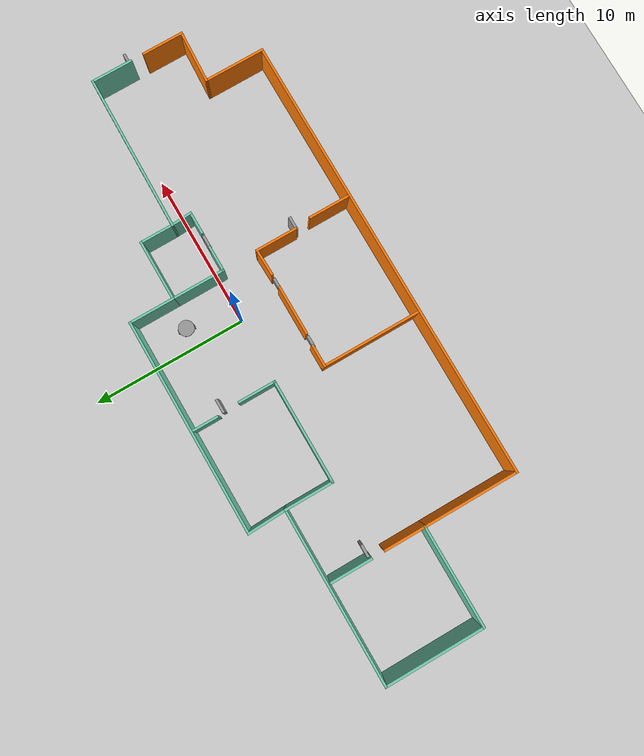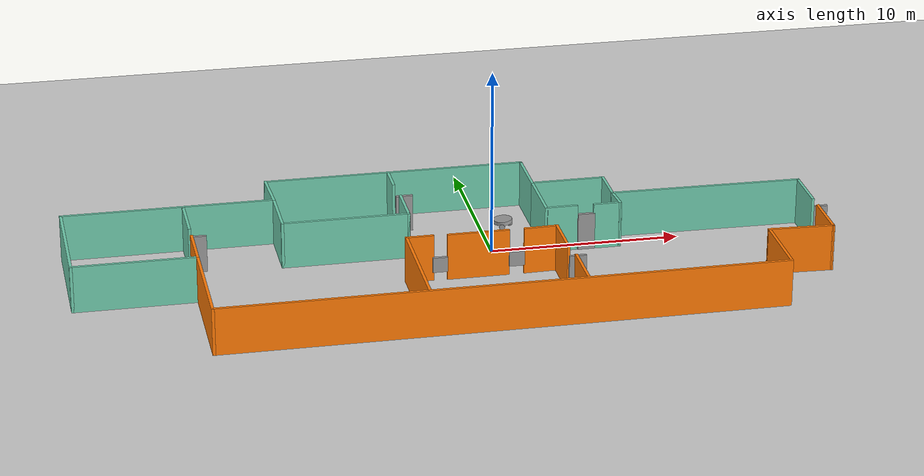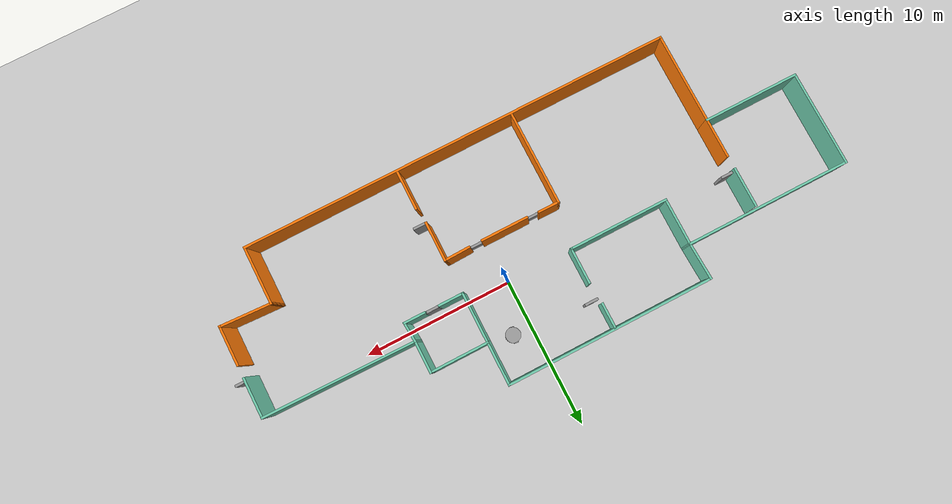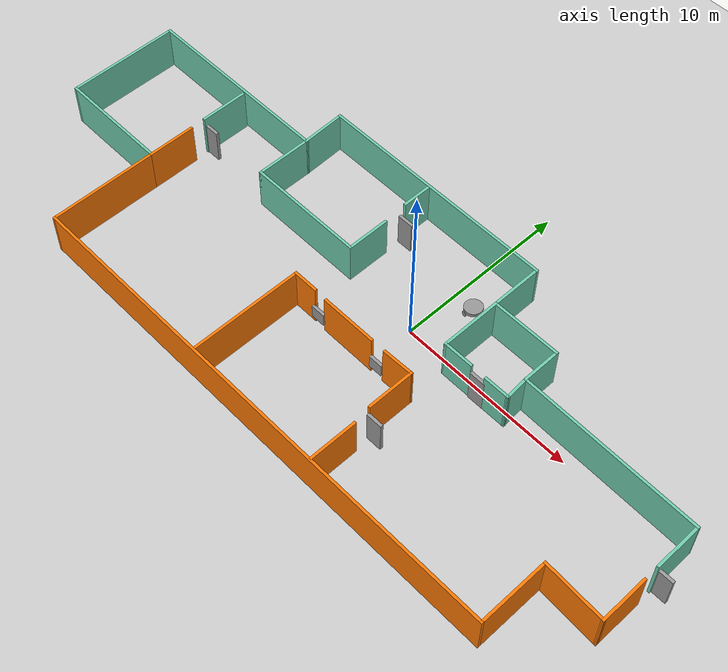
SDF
<sdf version="1.6">
 <world name="default">
  <plugin name="hello" filename="libhello.so"/>
  <light name="sun" type="directional">
   <pose>0 0 10 0 -0 0</pose>
   <diffuse>0.8 0.8 0.8 1</diffuse>
   <specular>0.2 0.2 0.2 1</specular>
   <attenuation>
    <range>1000</range>
    <constant>0.9</constant>
    <linear>0.01</linear>
    <quadratic>0.001</quadratic>
   </attenuation>
   <direction>-0.5 0.1 -0.9</direction>
  </light>
  <model name="ground_plane">
   <static>1</static>
   <link name="link">
    <collision name="collision">
     <geometry><plane><normal>0 0 1</normal><size>100 100</size></plane></geometry>
     <surface><friction><ode><mu>100</mu><mu2>50</mu2></ode></friction></surface>
    </collision>
    <visual name="visual">
     <cast_shadows>0</cast_shadows>
     <geometry><plane><normal>0 0 1</normal><size>100 100</size></plane></geometry>
     <material>
      <script><uri>file://media/materials/scripts/gazebo.material</uri><name>Gazebo/Grey</name></script>
     </material>
    </visual>
   </link>
  </model>
  <gravity>0 0 -9.8</gravity>
  <magnetic_field>6e-06 2.3e-05 -4.2e-05</magnetic_field>
  <atmosphere type="adiabatic"/>
  <physics name="default_physics" default="0" type="ode">
   <max_step_size>0.001</max_step_size>
   <real_time_factor>1</real_time_factor>
   <real_time_update_rate>1000</real_time_update_rate>
  </physics>
  <scene><ambient>0.4 0.4 0.4 1</ambient><background>0.7 0.7 0.7 1</background><shadows>1</shadows></scene>
  <spherical_coordinates>
   <surface_model>EARTH_WGS84</surface_model>
   <latitude_deg>0</latitude_deg>
   <longitude_deg>0</longitude_deg>
   <elevation>0</elevation>
   <heading_deg>0</heading_deg>
  </spherical_coordinates>
  <model name="Building">
   <pose>-2.663 -1.7492 0 0 -0 0</pose>
   <link name="Door_0">
    <collision name="Door_0_Collision">
     <geometry><box><size>0.9 0.17 2</size></box></geometry>
     <pose>0 0 1 0 -0 0</pose>
    </collision>
    <visual name="Door_0_Visual">
     <pose>0 0 1 0 -0 0</pose>
     <geometry><box><size>0.9 0.17 2</size></box></geometry>
     <material>
      <script><uri>file://media/materials/scripts/gazebo.material</uri><name>Gazebo/Grey</name></script>
     </material>
    </visual>
    <pose>7.59558 1.21844 0 0 -0 0</pose>
   </link>
   <link name="Door_1">
    <collision name="Door_1_Collision">
     <geometry><box><size>0.9 0.17 2</size></box></geometry>
     <pose>0 0 1 0 -0 0</pose>
    </collision>
    <visual name="Door_1_Visual">
     <pose>0 0 1 0 -0 0</pose>
     <geometry><box><size>0.9 0.17 2</size></box></geometry>
     <material>
      <script><uri>file://media/materials/scripts/gazebo.material</uri><name>Gazebo/Grey</name></script>
     </material>
    </visual>
    <pose>19.7905 -0.145416 0 0 -0 0</pose>
   </link>
   <link name="Door_2">
    <collision name="Door_2_Collision">
     <geometry><box><size>0.9 0.17 2</size></box></geometry>
     <pose>0 0 1 0 -0 0</pose>
    </collision>
    <visual name="Door_2_Visual">
     <pose>0 0 1 0 -0 0</pose>
     <geometry><box><size>0.9 0.17 2</size></box></geometry>
     <material>
      <script><uri>file://media/materials/scripts/gazebo.material</uri><name>Gazebo/Grey</name></script>
     </material>
    </visual>
    <pose>5.94671 -3.77556 0 0 -0 0</pose>
   </link>
   <link name="Door_3">
    <collision name="Door_3_Collision">
     <geometry><box><size>0.9 0.17 2</size></box></geometry>
     <pose>0 0 1 0 -0 0</pose>
    </collision>
    <visual name="Door_3_Visual">
     <pose>0 0 1 0 -0 0</pose>
     <geometry><box><size>0.9 0.17 2</size></box></geometry>
     <material>
      <script><uri>file://media/materials/scripts/gazebo.material</uri><name>Gazebo/Grey</name></script>
     </material>
    </visual>
    <pose>-1.31358 5.33056 0 0 -0 0</pose>
   </link>
   <link name="Door_4">
    <collision name="Door_4_Collision">
     <geometry><box><size>0.9 0.17 2</size></box></geometry>
     <pose>0 0 1 0 -0 0</pose>
    </collision>
    <visual name="Door_4_Visual">
     <pose>0 0 1 0 -0 0</pose>
     <geometry><box><size>0.9 0.17 2</size></box></geometry>
     <material>
      <script><uri>file://media/materials/scripts/gazebo.material</uri><name>Gazebo/Grey</name></script>
     </material>
    </visual>
    <pose>-12.6402 2.25295 0 0 -0 0</pose>
   </link>
   <link name="Wall_0">
    <collision name="Wall_0_Collision">
     <geometry><box><size>14 0.15 2.5</size></box></geometry>
     <pose>0 0 1.25 0 -0 0</pose>
    </collision>
    <visual name="Wall_0_Visual">
     <pose>0 0 1.25 0 -0 0</pose>
     <geometry><box><size>14 0.15 2.5</size></box></geometry>
     <material>
      <script><uri>file://media/materials/scripts/gazebo.material</uri><name>Gazebo/Grey</name></script>
      <ambient>0.435294 0.796078 0.67451 1</ambient>
     </material>
     <meta><layer>0</layer></meta>
    </visual>
    <pose>-1.47677 7.4485 0 0 -0 0</pose>
   </link>
   <link name="Wall_1">
    <collision name="Wall_1_Collision">
     <geometry><box><size>3 0.15 2.5</size></box></geometry>
     <pose>0 0 1.25 0 -0 0</pose>
    </collision>
    <visual name="Wall_1_Visual">
     <pose>0 0 1.25 0 -0 0</pose>
     <geometry><box><size>3 0.15 2.5</size></box></geometry>
     <material>
      <script><uri>file://media/materials/scripts/gazebo.material</uri><name>Gazebo/Grey</name></script>
      <ambient>0.435294 0.796078 0.67451 1</ambient>
     </material>
     <meta><layer>0</layer></meta>
    </visual>
    <pose>5.44822 6.0235 0 0 0 -1.5708</pose>
   </link>
   <link name="Wall_10">
    <collision name="Wall_10_Collision">
     <geometry><box><size>6.5 0.15 2.5</size></box></geometry>
     <pose>0 0 1.25 0 -0 0</pose>
    </collision>
    <visual name="Wall_10_Visual">
     <pose>0 0 1.25 0 -0 0</pose>
     <geometry><box><size>6.5 0.15 2.5</size></box></geometry>
     <material>
      <script><uri>file://media/materials/scripts/gazebo.material</uri><name>Gazebo/Grey</name></script>
      <ambient>0.435294 0.796078 0.67451 1</ambient>
     </material>
     <meta><layer>0</layer></meta>
    </visual>
    <pose>-16.2268 -1.3515 0 0 -0 3.14159</pose>
   </link>
   <link name="Wall_11">
    <collision name="Wall_11_Collision">
     <geometry><box><size>6.5 0.15 2.5</size></box></geometry>
     <pose>0 0 1.25 0 -0 0</pose>
    </collision>
    <visual name="Wall_11_Visual">
     <pose>0 0 1.25 0 -0 0</pose>
     <geometry><box><size>6.5 0.15 2.5</size></box></geometry>
     <material>
      <script><uri>file://media/materials/scripts/gazebo.material</uri><name>Gazebo/Grey</name></script>
      <ambient>0.435294 0.796078 0.67451 1</ambient>
     </material>
     <meta><layer>0</layer></meta>
    </visual>
    <pose>-19.4018 1.8235 0 0 -0 1.5708</pose>
   </link>
   <link name="Wall_12">
    <collision name="Wall_12_Collision">
     <geometry><box><size>11.25 0.15 2.5</size></box></geometry>
     <pose>0 0 1.25 0 -0 0</pose>
    </collision>
    <visual name="Wall_12_Visual">
     <pose>0 0 1.25 0 -0 0</pose>
     <geometry><box><size>11.25 0.15 2.5</size></box></geometry>
     <material>
      <script><uri>file://media/materials/scripts/gazebo.material</uri><name>Gazebo/Grey</name></script>
      <ambient>0.435294 0.796078 0.67451 1</ambient>
     </material>
     <meta><layer>0</layer></meta>
    </visual>
    <pose>-13.8518 4.9985 0 0 -0 0</pose>
   </link>
   <link name="Wall_13">
    <collision name="Wall_13_Collision">
     <geometry><box><size>2.60204 0.15 2.5</size></box></geometry>
     <pose>0 0 1.25 0 -0 0</pose>
    </collision>
    <visual name="Wall_13_Visual">
     <pose>0 0 1.25 0 -0 0</pose>
     <geometry><box><size>2.60204 0.15 2.5</size></box></geometry>
     <material>
      <script><uri>file://media/materials/scripts/gazebo.material</uri><name>Gazebo/Grey</name></script>
      <ambient>0.435294 0.796078 0.67451 1</ambient>
     </material>
     <meta><layer>0</layer></meta>
    </visual>
    <pose>-8.35177 6.2235 0 0 -0 1.61159</pose>
   </link>
   <link name="Wall_15">
    <collision name="Wall_15_Collision">
     <geometry><box><size>3.5 0.15 2.5</size></box></geometry>
     <pose>0 0 1.25 0 -0 0</pose>
    </collision>
    <visual name="Wall_15_Visual">
     <pose>0 0 1.25 0 -0 0</pose>
     <geometry><box><size>3.5 0.15 2.5</size></box></geometry>
     <material>
      <script><uri>file://media/materials/scripts/gazebo.material</uri><name>Gazebo/Grey</name></script>
      <ambient>0.435294 0.796078 0.67451 1</ambient>
     </material>
     <meta><layer>0</layer></meta>
    </visual>
    <pose>5.44822 2.9235 0 0 0 -1.5708</pose>
   </link>
   <link name="Wall_16">
    <collision name="Wall_16_Collision">
     <geometry><box><size>1.75 0.15 2.5</size></box></geometry>
     <pose>0 0 1.25 0 -0 0</pose>
    </collision>
    <visual name="Wall_16_Visual">
     <pose>0 0 1.25 0 -0 0</pose>
     <geometry><box><size>1.75 0.15 2.5</size></box></geometry>
     <material>
      <script><uri>file://media/materials/scripts/gazebo.material</uri><name>Gazebo/Grey</name></script>
      <ambient>0.435294 0.796078 0.67451 1</ambient>
     </material>
     <meta><layer>0</layer></meta>
    </visual>
    <pose>6.24822 1.2485 0 0 -0 0</pose>
   </link>
   <link name="Wall_2">
    <collision name="Wall_2_Collision">
     <geometry><box><size>4 0.15 2.5</size></box></geometry>
     <pose>0 0 1.25 0 -0 0</pose>
    </collision>
    <visual name="Wall_2_Visual">
     <pose>0 0 1.25 0 -0 0</pose>
     <geometry><box><size>4 0.15 2.5</size></box></geometry>
     <material>
      <script><uri>file://media/materials/scripts/gazebo.material</uri><name>Gazebo/Grey</name></script>
      <ambient>0.435294 0.796078 0.67451 1</ambient>
     </material>
     <meta><layer>0</layer></meta>
    </visual>
    <pose>7.37322 4.5985 0 0 -0 0</pose>
   </link>
   <link name="Wall_23">
    <collision name="Wall_23_Collision">
     <geometry><box><size>1.5 0.15 2.5</size></box></geometry>
     <pose>0 0 1.25 0 -0 0</pose>
    </collision>
    <visual name="Wall_23_Visual">
     <pose>0 0 1.25 0 -0 0</pose>
     <geometry><box><size>1.5 0.15 2.5</size></box></geometry>
     <material>
      <script><uri>file://media/materials/scripts/gazebo.material</uri><name>Gazebo/Grey</name></script>
      <ambient>0.435294 0.796078 0.67451 1</ambient>
     </material>
     <meta><layer>0</layer></meta>
    </visual>
    <pose>8.7156 1.21844 0 0 -0 0</pose>
   </link>
   <link name="Wall_24">
    <collision name="Wall_24_Collision">
     <geometry><box><size>1.43339 0.15 2.5</size></box></geometry>
     <pose>0 0 1.25 0 -0 0</pose>
    </collision>
    <visual name="Wall_24_Visual">
     <pose>0 0 1.25 0 -0 0</pose>
     <geometry><box><size>1.43339 0.15 2.5</size></box></geometry>
     <material>
      <script><uri>file://media/materials/scripts/gazebo.material</uri><name>Gazebo/Grey</name></script>
      <ambient>0.435294 0.796078 0.67451 1</ambient>
     </material>
     <meta><layer>0</layer></meta>
    </visual>
    <pose>9.34441 1.85847 0 0 -0 1.64283</pose>
   </link>
   <link name="Wall_26">
    <collision name="Wall_26_Collision">
     <geometry><box><size>2.75 0.15 2.5</size></box></geometry>
     <pose>0 0 1.25 0 -0 0</pose>
    </collision>
    <visual name="Wall_26_Visual">
     <pose>0 0 1.25 0 -0 0</pose>
     <geometry><box><size>2.75 0.15 2.5</size></box></geometry>
     <material>
      <script><uri>file://media/materials/scripts/gazebo.material</uri><name>Gazebo/Grey</name></script>
      <ambient>0.435294 0.796078 0.67451 1</ambient>
     </material>
     <meta><layer>0</layer></meta>
    </visual>
    <pose>19.3982 1.03576 0 0 0 -1.5708</pose>
   </link>
   <link name="Wall_28">
    <collision name="Wall_28_Collision">
     <geometry><box><size>2.75 0.15 2.5</size></box></geometry>
     <pose>0 0 1.25 0 -0 0</pose>
    </collision>
    <visual name="Wall_28_Visual">
     <pose>0 0 1.25 0 -0 0</pose>
     <geometry><box><size>2.75 0.15 2.5</size></box></geometry>
     <material>
      <script><uri>file://media/materials/scripts/gazebo.material</uri><name>Gazebo/Grey</name></script>
      <ambient>0.996078 0.47451 0.0196078 1</ambient>
     </material>
     <meta><layer>0</layer></meta>
    </visual>
    <pose>19.3982 -2.46424 0 0 -0 1.5708</pose>
   </link>
   <link name="Wall_3">
    <collision name="Wall_3_Collision">
     <geometry><box><size>2.25 0.15 2.5</size></box></geometry>
     <pose>0 0 1.25 0 -0 0</pose>
    </collision>
    <visual name="Wall_3_Visual">
     <pose>0 0 1.25 0 -0 0</pose>
     <geometry><box><size>2.25 0.15 2.5</size></box></geometry>
     <material>
      <script><uri>file://media/materials/scripts/gazebo.material</uri><name>Gazebo/Grey</name></script>
      <ambient>0.435294 0.796078 0.67451 1</ambient>
     </material>
     <meta><layer>0</layer></meta>
    </visual>
    <pose>9.29823 3.5485 0 0 0 -1.5708</pose>
   </link>
   <link name="Wall_30">
    <collision name="Wall_30_Collision">
     <geometry><box><size>6.5 0.15 2.5</size></box></geometry>
     <pose>0 0 1.25 0 -0 0</pose>
    </collision>
    <visual name="Wall_30_Visual">
     <pose>0 0 1.25 0 -0 0</pose>
     <geometry><box><size>6.5 0.15 2.5</size></box></geometry>
     <material>
      <script><uri>file://media/materials/scripts/gazebo.material</uri><name>Gazebo/Grey</name></script>
      <ambient>0.996078 0.47451 0.0196078 1</ambient>
     </material>
     <meta><layer>0</layer></meta>
    </visual>
    <pose>-2.35956 -4.23071 0 0 -0 1.5708</pose>
   </link>
   <link name="Wall_32">
    <collision name="Wall_32_Collision">
     <geometry><box><size>2.75 0.15 2.5</size></box></geometry>
     <pose>0 0 1.25 0 -0 0</pose>
    </collision>
    <visual name="Wall_32_Visual">
     <pose>0 0 1.25 0 -0 0</pose>
     <geometry><box><size>2.75 0.15 2.5</size></box></geometry>
     <material>
      <script><uri>file://media/materials/scripts/gazebo.material</uri><name>Gazebo/Grey</name></script>
      <ambient>0.996078 0.47451 0.0196078 1</ambient>
     </material>
     <meta><layer>0</layer></meta>
    </visual>
    <pose>5.49044 -2.3557 0 0 0 -1.5708</pose>
   </link>
   <link name="Wall_34">
    <collision name="Wall_34_Collision">
     <geometry><box><size>2.75 0.15 2.5</size></box></geometry>
     <pose>0 0 1.25 0 -0 0</pose>
    </collision>
    <visual name="Wall_34_Visual">
     <pose>0 0 1.25 0 -0 0</pose>
     <geometry><box><size>2.75 0.15 2.5</size></box></geometry>
     <material>
      <script><uri>file://media/materials/scripts/gazebo.material</uri><name>Gazebo/Grey</name></script>
      <ambient>0.996078 0.47451 0.0196078 1</ambient>
     </material>
     <meta><layer>0</layer></meta>
    </visual>
    <pose>5.63907 -6.06001 0 0 0 -1.5708</pose>
   </link>
   <link name="Wall_36">
    <collision name="Wall_36_Collision">
     <geometry><box><size>3.25 0.15 2.5</size></box></geometry>
     <pose>0 0 1.25 0 -0 0</pose>
    </collision>
    <visual name="Wall_36_Visual">
     <pose>0 0 1.25 0 -0 0</pose>
     <geometry><box><size>3.25 0.15 2.5</size></box></geometry>
     <material>
      <script><uri>file://media/materials/scripts/gazebo.material</uri><name>Gazebo/Grey</name></script>
      <ambient>0.435294 0.796078 0.67451 1</ambient>
     </material>
     <meta><layer>0</layer></meta>
    </visual>
    <pose>-8.30177 3.4485 0 0 0 -1.5708</pose>
   </link>
   <link name="Wall_37">
    <collision name="Wall_37_Collision">
     <geometry><box><size>6.75 0.15 2.5</size></box></geometry>
     <pose>0 0 1.25 0 -0 0</pose>
    </collision>
    <visual name="Wall_37_Visual">
     <pose>0 0 1.25 0 -0 0</pose>
     <geometry><box><size>6.75 0.15 2.5</size></box></geometry>
     <material>
      <script><uri>file://media/materials/scripts/gazebo.material</uri><name>Gazebo/Grey</name></script>
      <ambient>0.435294 0.796078 0.67451 1</ambient>
     </material>
     <meta><layer>0</layer></meta>
    </visual>
    <pose>-5.00178 1.8985 0 0 -0 0</pose>
   </link>
   <link name="Wall_38">
    <collision name="Wall_38_Collision">
     <geometry><box><size>2.5 0.15 2.5</size></box></geometry>
     <pose>0 0 1.25 0 -0 0</pose>
    </collision>
    <visual name="Wall_38_Visual">
     <pose>0 0 1.25 0 -0 0</pose>
     <geometry><box><size>2.5 0.15 2.5</size></box></geometry>
     <material>
      <script><uri>file://media/materials/scripts/gazebo.material</uri><name>Gazebo/Grey</name></script>
      <ambient>0.435294 0.796078 0.67451 1</ambient>
     </material>
     <meta><layer>0</layer></meta>
    </visual>
    <pose>-1.70178 3.0735 0 0 -0 1.5708</pose>
   </link>
   <link name="Wall_4">
    <collision name="Wall_4_Collision">
     <geometry><box><size>10.2513 0.15 2.5</size></box></geometry>
     <pose>0 0 1.25 0 -0 0</pose>
    </collision>
    <visual name="Wall_4_Visual">
     <pose>0 0 1.25 0 -0 0</pose>
     <geometry><box><size>10.2513 0.15 2.5</size></box></geometry>
     <material>
      <script><uri>file://media/materials/scripts/gazebo.material</uri><name>Gazebo/Grey</name></script>
      <ambient>0.435294 0.796078 0.67451 1</ambient>
     </material>
     <meta><layer>0</layer></meta>
    </visual>
    <pose>14.3482 2.41713 0 0 0 -0.016112</pose>
   </link>
   <link name="Wall_42">
    <collision name="Wall_42_Collision">
     <geometry><box><size>1.75 0.15 2.5</size></box></geometry>
     <pose>0 0 1.25 0 -0 0</pose>
    </collision>
    <visual name="Wall_42_Visual">
     <pose>0 0 1.25 0 -0 0</pose>
     <geometry><box><size>1.75 0.15 2.5</size></box></geometry>
     <material>
      <script><uri>file://media/materials/scripts/gazebo.material</uri><name>Gazebo/Grey</name></script>
      <ambient>0.435294 0.796078 0.67451 1</ambient>
     </material>
     <meta><layer>0</layer></meta>
    </visual>
    <pose>-1.80581 6.56126 0 0 -0 1.5708</pose>
   </link>
   <link name="Wall_44">
    <collision name="Wall_44_Collision">
     <geometry><box><size>1.5 0.15 2.5</size></box></geometry>
     <pose>0 0 1.25 0 -0 0</pose>
    </collision>
    <visual name="Wall_44_Visual">
     <pose>0 0 1.25 0 -0 0</pose>
     <geometry><box><size>1.5 0.15 2.5</size></box></geometry>
     <material>
      <script><uri>file://media/materials/scripts/gazebo.material</uri><name>Gazebo/Grey</name></script>
      <ambient>0.996078 0.47451 0.0196078 1</ambient>
     </material>
     <meta><layer>0</layer></meta>
    </visual>
    <pose>-1.68456 -1.05571 0 0 -0 0</pose>
   </link>
   <link name="Wall_46">
    <collision name="Wall_46_Collision">
     <geometry><box><size>3.25 0.15 2.5</size></box></geometry>
     <pose>0 0 1.25 0 -0 0</pose>
    </collision>
    <visual name="Wall_46_Visual">
     <pose>0 0 1.25 0 -0 0</pose>
     <geometry><box><size>3.25 0.15 2.5</size></box></geometry>
     <material>
      <script><uri>file://media/materials/scripts/gazebo.material</uri><name>Gazebo/Grey</name></script>
      <ambient>0.996078 0.47451 0.0196078 1</ambient>
     </material>
     <meta><layer>0</layer></meta>
    </visual>
    <pose>1.36352 -1.10413 0 0 -0 0</pose>
   </link>
   <link name="Wall_48">
    <collision name="Wall_48_Collision">
     <geometry><box><size>1.8203 0.15 2.5</size></box></geometry>
     <pose>0 0 1.25 0 -0 0</pose>
    </collision>
    <visual name="Wall_48_Visual">
     <pose>0 0 1.25 0 -0 0</pose>
     <geometry><box><size>1.8203 0.15 2.5</size></box></geometry>
     <material>
      <script><uri>file://media/materials/scripts/gazebo.material</uri><name>Gazebo/Grey</name></script>
      <ambient>0.996078 0.47451 0.0196078 1</ambient>
     </material>
     <meta><layer>0</layer></meta>
    </visual>
    <pose>4.65564 -1.07992 0 0 -0 0.028994</pose>
   </link>
   <link name="Wall_51">
    <collision name="Wall_51_Collision">
     <geometry><box><size>2.75 0.15 2.5</size></box></geometry>
     <pose>0 0 1.25 0 -0 0</pose>
    </collision>
    <visual name="Wall_51_Visual">
     <pose>0 0 1.25 0 -0 0</pose>
     <geometry><box><size>2.75 0.15 2.5</size></box></geometry>
     <material>
      <script><uri>file://media/materials/scripts/gazebo.material</uri><name>Gazebo/Grey</name></script>
      <ambient>0.996078 0.47451 0.0196078 1</ambient>
     </material>
     <meta><layer>0</layer></meta>
    </visual>
    <pose>-13.0518 -0.051498 0 0 -0 1.5708</pose>
   </link>
   <link name="Wall_53">
    <collision name="Wall_53_Collision">
     <geometry><box><size>2.75 0.15 2.5</size></box></geometry>
     <pose>0 0 1.25 0 -0 0</pose>
    </collision>
    <visual name="Wall_53_Visual">
     <pose>0 0 1.25 0 -0 0</pose>
     <geometry><box><size>2.75 0.15 2.5</size></box></geometry>
     <material>
      <script><uri>file://media/materials/scripts/gazebo.material</uri><name>Gazebo/Grey</name></script>
      <ambient>0.435294 0.796078 0.67451 1</ambient>
     </material>
     <meta><layer>0</layer></meta>
    </visual>
    <pose>-13.0647 3.48219 0 0 -0 1.5708</pose>
   </link>
   <link name="Wall_6">
    <collision name="Wall_6_Collision">
     <geometry><box><size>3.50395 0.15 2.5</size></box></geometry>
     <pose>0 0 1.25 0 -0 0</pose>
    </collision>
    <visual name="Wall_6_Visual">
     <pose>0 0 1.25 0 -0 0</pose>
     <geometry><box><size>3.50395 0.15 2.5</size></box></geometry>
     <material>
      <script><uri>file://media/materials/scripts/gazebo.material</uri><name>Gazebo/Grey</name></script>
      <ambient>0.996078 0.47451 0.0196078 1</ambient>
     </material>
     <meta><layer>0</layer></meta>
    </visual>
    <pose>17.7232 -3.68287 0 0 -0 3.09305</pose>
   </link>
   <link name="Wall_7">
    <collision name="Wall_7_Collision">
     <geometry><box><size>4 0.15 2.5</size></box></geometry>
     <pose>0 0 1.25 0 -0 0</pose>
    </collision>
    <visual name="Wall_7_Visual">
     <pose>0 0 1.25 0 -0 0</pose>
     <geometry><box><size>4 0.15 2.5</size></box></geometry>
     <material>
      <script><uri>file://media/materials/scripts/gazebo.material</uri><name>Gazebo/Grey</name></script>
      <ambient>0.996078 0.47451 0.0196078 1</ambient>
     </material>
     <meta><layer>0</layer></meta>
    </visual>
    <pose>16.0482 -5.5265 0 0 0 -1.5708</pose>
   </link>
   <link name="Wall_8">
    <collision name="Wall_8_Collision">
     <geometry><box><size>29.25 0.15 2.5</size></box></geometry>
     <pose>0 0 1.25 0 -0 0</pose>
    </collision>
    <visual name="Wall_8_Visual">
     <pose>0 0 1.25 0 -0 0</pose>
     <geometry><box><size>29.25 0.15 2.5</size></box></geometry>
     <material>
      <script><uri>file://media/materials/scripts/gazebo.material</uri><name>Gazebo/Grey</name></script>
      <ambient>0.996078 0.47451 0.0196078 1</ambient>
     </material>
     <meta><layer>0</layer></meta>
    </visual>
    <pose>1.49822 -7.4515 0 0 -0 3.14159</pose>
   </link>
   <link name="Wall_9">
    <collision name="Wall_9_Collision">
     <geometry><box><size>6.25 0.15 2.5</size></box></geometry>
     <pose>0 0 1.25 0 -0 0</pose>
    </collision>
    <visual name="Wall_9_Visual">
     <pose>0 0 1.25 0 -0 0</pose>
     <geometry><box><size>6.25 0.15 2.5</size></box></geometry>
     <material>
      <script><uri>file://media/materials/scripts/gazebo.material</uri><name>Gazebo/Grey</name></script>
      <ambient>0.996078 0.47451 0.0196078 1</ambient>
     </material>
     <meta><layer>0</layer></meta>
    </visual>
    <pose>-13.0518 -4.4015 0 0 -0 1.5708</pose>
   </link>
   <link name="Window_0">
    <collision name="Window_0_Collision">
     <geometry><box><size>0.8 0.17 0.8</size></box></geometry>
     <pose>0 0 0.4 0 -0 0</pose>
    </collision>
    <visual name="Window_0_Visual">
     <pose>0 0 0.4 0 -0 0</pose>
     <geometry><box><size>0.8 0.17 0.8</size></box></geometry>
     <material>
      <script><uri>file://media/materials/scripts/gazebo.material</uri><name>Gazebo/Grey</name></script>
     </material>
    </visual>
    <pose>-0.636777 -1.19139 0.5 0 -0 0</pose>
   </link>
   <link name="Window_1">
    <collision name="Window_1_Collision">
     <geometry><box><size>0.8 0.17 0.8</size></box></geometry>
     <pose>0 0 0.4 0 -0 0</pose>
    </collision>
    <visual name="Window_1_Visual">
     <pose>0 0 0.4 0 -0 0</pose>
     <geometry><box><size>0.8 0.17 0.8</size></box></geometry>
     <material>
      <script><uri>file://media/materials/scripts/gazebo.material</uri><name>Gazebo/Grey</name></script>
     </material>
    </visual>
    <pose>3.36253 -1.19139 0.5 0 -0 0</pose>
   </link>
   <static>1</static>
  </model>
  <model name="HumanoidRobot">
   <link name="link_1">
    <pose>0 -0.5 -0.05 -1.5708 0 0</pose>
    <inertial>
     <mass>0.00453065</mass>
     <inertia>
      <ixx>2.985e-05</ixx>
      <ixy>0</ixy>
      <ixz>0</ixz>
      <iyy>2.985e-05</iyy>
      <iyz>0</iyz>
      <izz>5.824e-05</izz>
     </inertia>
    </inertial>
    <visual name="visual">
     <geometry><cylinder><radius>0.15</radius><length>0.06</length></cylinder></geometry>
     <material>
      <lighting>1</lighting>
      <script><uri>file://media/materials/scripts/gazebo.material</uri><name>Gazebo/Grey</name></script>
      <ambient>0.3 0.3 0.3 1</ambient>
      <diffuse>0.7 0.7 0.7 1</diffuse>
      <specular>0.01 0.01 0.01 1</specular>
      <emissive>0 0 0 1</emissive>
      <shader type="vertex"><normal_map>__default__</normal_map></shader>
     </material>
    </visual>
    <collision name="collision">
     <geometry><cylinder><radius>0.15</radius><length>0.06</length></cylinder></geometry>
     <surface>
      <friction>
       <ode><mu>1</mu><mu2>1</mu2><fdir1>0 0 0</fdir1><slip1>0</slip1><slip2>0</slip2></ode>
       <torsional>
        <coefficient>1</coefficient>
        <patch_radius>0</patch_radius>
        <surface_radius>0</surface_radius>
        <use_patch_radius>1</use_patch_radius>
        <ode><slip>0</slip></ode>
       </torsional>
      </friction>
      <bounce><restitution_coefficient>0</restitution_coefficient><threshold>1e+06</threshold></bounce>
      <contact>
       <collide_without_contact>0</collide_without_contact>
       <collide_without_contact_bitmask>1</collide_without_contact_bitmask>
       <collide_bitmask>1</collide_bitmask>
       <ode>
        <soft_cfm>0</soft_cfm>
        <soft_erp>0.2</soft_erp>
        <kp>1e+13</kp>
        <kd>1</kd>
        <max_vel>0.01</max_vel>
        <min_depth>0</min_depth>
       </ode>
       <bullet>
        <split_impulse>1</split_impulse>
        <split_impulse_penetration_threshold>-0.01</split_impulse_penetration_threshold>
        <soft_cfm>0</soft_cfm>
        <soft_erp>0.2</soft_erp>
        <kp>1e+13</kp>
        <kd>1</kd>
       </bullet>
      </contact>
     </surface>
    </collision>
   </link>
   <link name="link_0">
    <pose>0.415993 0.06221 -0.082252 -1.55904 -0 0</pose>
    <inertial>
     <mass>0.011821</mass>
     <inertia>
      <ixx>6.133e-05</ixx>
      <ixy>0</ixy>
      <ixz>0</ixz>
      <iyy>6.133e-05</iyy>
      <iyz>0</iyz>
      <izz>6.133e-05</izz>
     </inertia>
    </inertial>
    <visual name="visual">
     <geometry><sphere><radius>0.15</radius></sphere></geometry>
     <material>
      <lighting>1</lighting>
      <script><uri>file://media/materials/scripts/gazebo.material</uri><name>Gazebo/Grey</name></script>
      <ambient>0.3 0.3 0.3 1</ambient>
      <diffuse>0.7 0.7 0.7 1</diffuse>
      <specular>0.01 0.01 0.01 1</specular>
      <emissive>0 0 0 1</emissive>
      <shader type="vertex"><normal_map>__default__</normal_map></shader>
     </material>
    </visual>
    <collision name="collision">
     <geometry><sphere><radius>0.15</radius></sphere></geometry>
     <surface>
      <friction>
       <ode><mu>1</mu><mu2>1</mu2><fdir1>0 0 0</fdir1><slip1>0</slip1><slip2>0</slip2></ode>
       <torsional>
        <coefficient>1</coefficient>
        <patch_radius>0</patch_radius>
        <surface_radius>0</surface_radius>
        <use_patch_radius>1</use_patch_radius>
        <ode><slip>0</slip></ode>
       </torsional>
      </friction>
      <bounce><restitution_coefficient>0</restitution_coefficient><threshold>1e+06</threshold></bounce>
      <contact>
       <collide_without_contact>0</collide_without_contact>
       <collide_without_contact_bitmask>1</collide_without_contact_bitmask>
       <collide_bitmask>1</collide_bitmask>
       <ode>
        <soft_cfm>0</soft_cfm>
        <soft_erp>0.2</soft_erp>
        <kp>1e+13</kp>
        <kd>1</kd>
        <max_vel>0.01</max_vel>
        <min_depth>0</min_depth>
       </ode>
       <bullet>
        <split_impulse>1</split_impulse>
        <split_impulse_penetration_threshold>-0.01</split_impulse_penetration_threshold>
        <soft_cfm>0</soft_cfm>
        <soft_erp>0.2</soft_erp>
        <kp>1e+13</kp>
        <kd>1</kd>
       </bullet>
      </contact>
     </surface>
    </collision>
   </link>
   <link name="link_1_clone">
    <pose>0 0.5 -0.05 1.5708 -0 0</pose>
    <inertial>
     <mass>0.00453065</mass>
     <inertia>
      <ixx>2.985e-05</ixx>
      <ixy>0</ixy>
      <ixz>0</ixz>
      <iyy>2.985e-05</iyy>
      <iyz>0</iyz>
      <izz>5.824e-05</izz>
     </inertia>
    </inertial>
    <visual name="visual">
     <geometry><cylinder><radius>0.15</radius><length>0.06</length></cylinder></geometry>
     <material>
      <lighting>1</lighting>
      <script><uri>file://media/materials/scripts/gazebo.material</uri><name>Gazebo/Grey</name></script>
      <ambient>0.3 0.3 0.3 1</ambient>
      <diffuse>0.7 0.7 0.7 1</diffuse>
      <specular>0.01 0.01 0.01 1</specular>
      <emissive>0 0 0 1</emissive>
      <shader type="pixel"><normal_map>__default__</normal_map></shader>
     </material>
    </visual>
    <collision name="collision">
     <geometry><cylinder><radius>0.15</radius><length>0.06</length></cylinder></geometry>
     <surface>
      <friction>
       <ode><mu>1</mu><mu2>1</mu2><fdir1>0 0 0</fdir1><slip1>0</slip1><slip2>0</slip2></ode>
       <torsional>
        <coefficient>1</coefficient>
        <patch_radius>0</patch_radius>
        <surface_radius>0</surface_radius>
        <use_patch_radius>1</use_patch_radius>
        <ode><slip>0</slip></ode>
       </torsional>
      </friction>
      <bounce><restitution_coefficient>0</restitution_coefficient><threshold>1e+06</threshold></bounce>
      <contact>
       <collide_without_contact>0</collide_without_contact>
       <collide_without_contact_bitmask>1</collide_without_contact_bitmask>
       <collide_bitmask>1</collide_bitmask>
       <ode>
        <soft_cfm>0</soft_cfm>
        <soft_erp>0.2</soft_erp>
        <kp>1e+13</kp>
        <kd>1</kd>
        <max_vel>0.01</max_vel>
        <min_depth>0</min_depth>
       </ode>
       <bullet>
        <split_impulse>1</split_impulse>
        <split_impulse_penetration_threshold>-0.01</split_impulse_penetration_threshold>
        <soft_cfm>0</soft_cfm>
        <soft_erp>0.2</soft_erp>
        <kp>1e+13</kp>
        <kd>1</kd>
       </bullet>
      </contact>
     </surface>
    </collision>
   </link>
   <link name="link_2">
    <pose>0.062909 -0.001806 0.119694 0 -0 0</pose>
    <inertial>
     <mass>0.158275</mass>
     <inertia>
      <ixx>0.0102226</ixx>
      <ixy>0</ixy>
      <ixz>0</ixz>
      <iyy>0.0102226</iyy>
      <iyz>0</iyz>
      <izz>0.0197843</izz>
     </inertia>
    </inertial>
    <visual name="visual">
     <geometry><cylinder><radius>0.5</radius><length>0.2</length></cylinder></geometry>
     <material>
      <lighting>1</lighting>
      <script><uri>file://media/materials/scripts/gazebo.material</uri><name>Gazebo/Grey</name></script>
      <ambient>0.3 0.3 0.3 1</ambient>
      <diffuse>0.7 0.7 0.7 1</diffuse>
      <specular>0.01 0.01 0.01 1</specular>
      <emissive>0 0 0 1</emissive>
      <shader type="vertex"><normal_map>__default__</normal_map></shader>
     </material>
    </visual>
    <collision name="collision">
     <geometry><cylinder><radius>0.5</radius><length>0.2</length></cylinder></geometry>
     <surface>
      <friction>
       <ode><mu>1</mu><mu2>1</mu2><fdir1>0 0 0</fdir1><slip1>0</slip1><slip2>0</slip2></ode>
       <torsional>
        <coefficient>1</coefficient>
        <patch_radius>0</patch_radius>
        <surface_radius>0</surface_radius>
        <use_patch_radius>1</use_patch_radius>
        <ode><slip>0</slip></ode>
       </torsional>
      </friction>
      <bounce><restitution_coefficient>0</restitution_coefficient><threshold>1e+06</threshold></bounce>
      <contact>
       <collide_without_contact>0</collide_without_contact>
       <collide_without_contact_bitmask>1</collide_without_contact_bitmask>
       <collide_bitmask>1</collide_bitmask>
       <ode>
        <soft_cfm>0</soft_cfm>
        <soft_erp>0.2</soft_erp>
        <kp>1e+13</kp>
        <kd>1</kd>
        <max_vel>0.01</max_vel>
        <min_depth>0</min_depth>
       </ode>
       <bullet>
        <split_impulse>1</split_impulse>
        <split_impulse_penetration_threshold>-0.01</split_impulse_penetration_threshold>
        <soft_cfm>0</soft_cfm>
        <soft_erp>0.2</soft_erp>
        <kp>1e+13</kp>
        <kd>1</kd>
       </bullet>
      </contact>
     </surface>
    </collision>
   </link>
   <joint name="link_2_JOINT_0_0" type="revolute">
    <parent>link_2</parent>
    <child>link_0</child>
    <axis>
     <xyz>1 0 0</xyz>
     <use_parent_model_frame>0</use_parent_model_frame>
     <limit>
      <lower>-1.79769e+308</lower>
      <upper>1.79769e+308</upper>
      <effort>-1</effort>
      <velocity>-1</velocity>
     </limit>
     <dynamics>
      <spring_reference>0</spring_reference>
      <spring_stiffness>0</spring_stiffness>
      <damping>0</damping>
      <friction>0</friction>
     </dynamics>
    </axis>
    <physics>
     <ode><limit><cfm>0</cfm><erp>0.2</erp></limit><suspension><cfm>0</cfm><erp>0.2</erp></suspension></ode>
    </physics>
   </joint>
   <joint name="link_2_JOINT_0" type="revolute">
    <parent>link_2</parent>
    <child>link_1_clone</child>
    <axis>
     <xyz>1 0 0</xyz>
     <use_parent_model_frame>0</use_parent_model_frame>
     <limit>
      <lower>-1.79769e+308</lower>
      <upper>1.79769e+308</upper>
      <effort>-1</effort>
      <velocity>-1</velocity>
     </limit>
     <dynamics>
      <spring_reference>0</spring_reference>
      <spring_stiffness>0</spring_stiffness>
      <damping>0</damping>
      <friction>0</friction>
     </dynamics>
    </axis>
    <physics>
     <ode><limit><cfm>0</cfm><erp>0.2</erp></limit><suspension><cfm>0</cfm><erp>0.2</erp></suspension></ode>
    </physics>
   </joint>
   <joint name="link_2_JOINT_1" type="revolute">
    <parent>link_2</parent>
    <child>link_1</child>
    <axis>
     <xyz>1 0 0</xyz>
     <use_parent_model_frame>0</use_parent_model_frame>
     <limit>
      <lower>-1.79769e+308</lower>
      <upper>1.79769e+308</upper>
      <effort>-1</effort>
      <velocity>-1</velocity>
     </limit>
     <dynamics>
      <spring_reference>0</spring_reference>
      <spring_stiffness>0</spring_stiffness>
      <damping>0</damping>
      <friction>0</friction>
     </dynamics>
    </axis>
    <physics>
     <ode><limit><cfm>0</cfm><erp>0.2</erp></limit><suspension><cfm>0</cfm><erp>0.2</erp></suspension></ode>
    </physics>
   </joint>
   <static>0</static>
   <pose>1.21246 3.12265 0.199779 -0.00018 -0.073815 -0.184899</pose>
  </model>
 </world>
</sdf>
